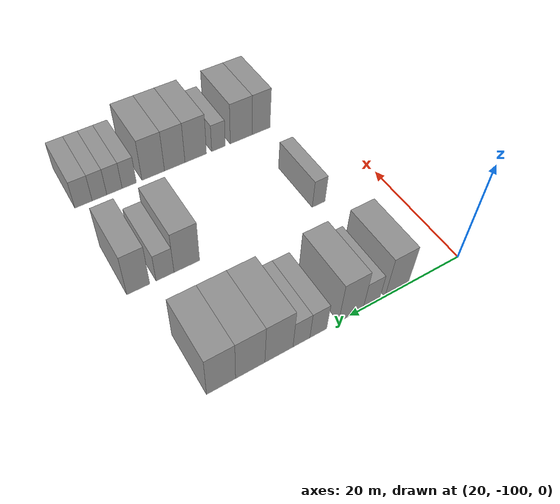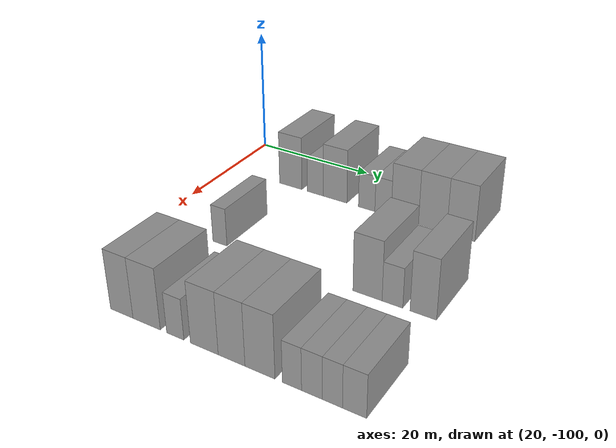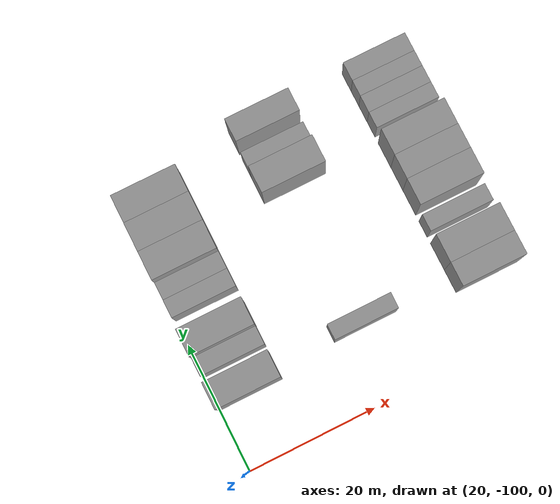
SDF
<sdf version="1.6">
 <world name="default">
  <model name="building_40">
   <static>1</static>
   <pose>25.0000 -88.2988 0 0.000000 0.000000 0.000000</pose>
   <link name="link">
    <pose>0 0 4.50 0 0 0</pose>
    <collision name="collision"><geometry><box><size>10.0000 4.1990 9.0000</size></box></geometry></collision>
    <visual name="visual">
     <cast_shadows>0</cast_shadows>
     <geometry><box><size>10.0000 4.1990 9.0000</size></box></geometry>
     <material>
      <script>
       <uri>model://grey_wall/materials/scripts</uri>
       <uri>model://grey_wall/materials/textures</uri>
       <name>vrc/grey_wall</name>
      </script>
     </material>
    </visual>
   </link>
  </model>
  <model name="building_41">
   <static>1</static>
   <pose>25.0000 -83.7598 0 0.000000 0.000000 0.000000</pose>
   <link name="link">
    <pose>0 0 3.00 0 0 0</pose>
    <collision name="collision"><geometry><box><size>10.0000 2.8790 6.0000</size></box></geometry></collision>
    <visual name="visual">
     <cast_shadows>0</cast_shadows>
     <geometry><box><size>10.0000 2.8790 6.0000</size></box></geometry>
     <material>
      <script>
       <uri>model://grey_wall/materials/scripts</uri>
       <uri>model://grey_wall/materials/textures</uri>
       <name>vrc/grey_wall</name>
      </script>
     </material>
    </visual>
   </link>
  </model>
  <model name="building_42">
   <static>1</static>
   <pose>25.0000 -80.1985 0 0.000000 0.000000 0.000000</pose>
   <link name="link">
    <pose>0 0 4.50 0 0 0</pose>
    <collision name="collision"><geometry><box><size>10.0000 4.2437 9.0000</size></box></geometry></collision>
    <visual name="visual">
     <cast_shadows>0</cast_shadows>
     <geometry><box><size>10.0000 4.2437 9.0000</size></box></geometry>
     <material>
      <script>
       <uri>model://grey_wall/materials/scripts</uri>
       <uri>model://grey_wall/materials/textures</uri>
       <name>vrc/grey_wall</name>
      </script>
     </material>
    </visual>
   </link>
  </model>
  <model name="building_43">
   <static>1</static>
   <pose>25.0000 -74.6716 0 0.000000 0.000000 0.000000</pose>
   <link name="link">
    <pose>0 0 3.00 0 0 0</pose>
    <collision name="collision"><geometry><box><size>10.0000 2.8101 6.0000</size></box></geometry></collision>
    <visual name="visual">
     <cast_shadows>0</cast_shadows>
     <geometry><box><size>10.0000 2.8101 6.0000</size></box></geometry>
     <material>
      <script>
       <uri>model://grey_wall/materials/scripts</uri>
       <uri>model://grey_wall/materials/textures</uri>
       <name>vrc/grey_wall</name>
      </script>
     </material>
    </visual>
   </link>
  </model>
  <model name="building_44">
   <static>1</static>
   <pose>25.0000 -71.8956 0 0.000000 0.000000 0.000000</pose>
   <link name="link">
    <pose>0 0 3.00 0 0 0</pose>
    <collision name="collision"><geometry><box><size>10.0000 2.7419 6.0000</size></box></geometry></collision>
    <visual name="visual">
     <cast_shadows>0</cast_shadows>
     <geometry><box><size>10.0000 2.7419 6.0000</size></box></geometry>
     <material>
      <script>
       <uri>model://grey_wall/materials/scripts</uri>
       <uri>model://grey_wall/materials/textures</uri>
       <name>vrc/grey_wall</name>
      </script>
     </material>
    </visual>
   </link>
  </model>
  <model name="building_45">
   <static>1</static>
   <pose>25.0000 -68.2941 0 0.000000 0.000000 0.000000</pose>
   <link name="link">
    <pose>0 0 4.50 0 0 0</pose>
    <collision name="collision"><geometry><box><size>10.0000 4.4611 9.0000</size></box></geometry></collision>
    <visual name="visual">
     <cast_shadows>0</cast_shadows>
     <geometry><box><size>10.0000 4.4611 9.0000</size></box></geometry>
     <material>
      <script>
       <uri>model://grey_wall/materials/scripts</uri>
       <uri>model://grey_wall/materials/textures</uri>
       <name>vrc/grey_wall</name>
      </script>
     </material>
    </visual>
   </link>
  </model>
  <model name="building_46">
   <static>1</static>
   <pose>25.0000 -63.8173 0 0.000000 0.000000 0.000000</pose>
   <link name="link">
    <pose>0 0 4.50 0 0 0</pose>
    <collision name="collision"><geometry><box><size>10.0000 4.4925 9.0000</size></box></geometry></collision>
    <visual name="visual">
     <cast_shadows>0</cast_shadows>
     <geometry><box><size>10.0000 4.4925 9.0000</size></box></geometry>
     <material>
      <script>
       <uri>model://grey_wall/materials/scripts</uri>
       <uri>model://grey_wall/materials/textures</uri>
       <name>vrc/grey_wall</name>
      </script>
     </material>
    </visual>
   </link>
  </model>
  <model name="building_47">
   <static>1</static>
   <pose>25.0000 -59.4167 0 0.000000 0.000000 0.000000</pose>
   <link name="link">
    <pose>0 0 4.50 0 0 0</pose>
    <collision name="collision"><geometry><box><size>10.0000 4.3088 9.0000</size></box></geometry></collision>
    <visual name="visual">
     <cast_shadows>0</cast_shadows>
     <geometry><box><size>10.0000 4.3088 9.0000</size></box></geometry>
     <material>
      <script>
       <uri>model://grey_wall/materials/scripts</uri>
       <uri>model://grey_wall/materials/textures</uri>
       <name>vrc/grey_wall</name>
      </script>
     </material>
    </visual>
   </link>
  </model>
  <model name="building_148">
   <static>1</static>
   <pose>44.0000 -87.8581 0 0.000000 0.000000 0.000000</pose>
   <link name="link">
    <pose>0 0 3.00 0 0 0</pose>
    <collision name="collision"><geometry><box><size>10.0000 2.4614 6.0000</size></box></geometry></collision>
    <visual name="visual">
     <cast_shadows>0</cast_shadows>
     <geometry><box><size>10.0000 2.4614 6.0000</size></box></geometry>
     <material>
      <script>
       <uri>model://grey_wall/materials/scripts</uri>
       <uri>model://grey_wall/materials/textures</uri>
       <name>vrc/grey_wall</name>
      </script>
     </material>
    </visual>
   </link>
  </model>
  <model name="building_149">
   <static>1</static>
   <pose>44.0000 -64.2632 0 0.000000 0.000000 0.000000</pose>
   <link name="link">
    <pose>0 0 4.50 0 0 0</pose>
    <collision name="collision"><geometry><box><size>10.0000 4.2428 9.0000</size></box></geometry></collision>
    <visual name="visual">
     <cast_shadows>0</cast_shadows>
     <geometry><box><size>10.0000 4.2428 9.0000</size></box></geometry>
     <material>
      <script>
       <uri>model://grey_wall/materials/scripts</uri>
       <uri>model://grey_wall/materials/textures</uri>
       <name>vrc/grey_wall</name>
      </script>
     </material>
    </visual>
   </link>
  </model>
  <model name="building_150">
   <static>1</static>
   <pose>44.0000 -60.6771 0 0.000000 0.000000 0.000000</pose>
   <link name="link">
    <pose>0 0 3.00 0 0 0</pose>
    <collision name="collision"><geometry><box><size>10.0000 2.9295 6.0000</size></box></geometry></collision>
    <visual name="visual">
     <cast_shadows>0</cast_shadows>
     <geometry><box><size>10.0000 2.9295 6.0000</size></box></geometry>
     <material>
      <script>
       <uri>model://grey_wall/materials/scripts</uri>
       <uri>model://grey_wall/materials/textures</uri>
       <name>vrc/grey_wall</name>
      </script>
     </material>
    </visual>
   </link>
  </model>
  <model name="building_151">
   <static>1</static>
   <pose>44.0000 -56.3960 0 0.000000 0.000000 0.000000</pose>
   <link name="link">
    <pose>0 0 4.50 0 0 0</pose>
    <collision name="collision"><geometry><box><size>10.0000 3.6327 9.0000</size></box></geometry></collision>
    <visual name="visual">
     <cast_shadows>0</cast_shadows>
     <geometry><box><size>10.0000 3.6327 9.0000</size></box></geometry>
     <material>
      <script>
       <uri>model://grey_wall/materials/scripts</uri>
       <uri>model://grey_wall/materials/textures</uri>
       <name>vrc/grey_wall</name>
      </script>
     </material>
    </visual>
   </link>
  </model>
  <model name="building_268">
   <static>1</static>
   <pose>63.0000 -88.7123 0 0.000000 0.000000 0.000000</pose>
   <link name="link">
    <pose>0 0 4.50 0 0 0</pose>
    <collision name="collision"><geometry><box><size>10.0000 3.7062 9.0000</size></box></geometry></collision>
    <visual name="visual">
     <cast_shadows>0</cast_shadows>
     <geometry><box><size>10.0000 3.7062 9.0000</size></box></geometry>
     <material>
      <script>
       <uri>model://grey_wall/materials/scripts</uri>
       <uri>model://grey_wall/materials/textures</uri>
       <name>vrc/grey_wall</name>
      </script>
     </material>
    </visual>
   </link>
  </model>
  <model name="building_269">
   <static>1</static>
   <pose>63.0000 -84.6684 0 0.000000 0.000000 0.000000</pose>
   <link name="link">
    <pose>0 0 4.50 0 0 0</pose>
    <collision name="collision"><geometry><box><size>10.0000 4.3816 9.0000</size></box></geometry></collision>
    <visual name="visual">
     <cast_shadows>0</cast_shadows>
     <geometry><box><size>10.0000 4.3816 9.0000</size></box></geometry>
     <material>
      <script>
       <uri>model://grey_wall/materials/scripts</uri>
       <uri>model://grey_wall/materials/textures</uri>
       <name>vrc/grey_wall</name>
      </script>
     </material>
    </visual>
   </link>
  </model>
  <model name="building_270">
   <static>1</static>
   <pose>63.0000 -80.1488 0 0.000000 0.000000 0.000000</pose>
   <link name="link">
    <pose>0 0 3.00 0 0 0</pose>
    <collision name="collision"><geometry><box><size>10.0000 2.6576 6.0000</size></box></geometry></collision>
    <visual name="visual">
     <cast_shadows>0</cast_shadows>
     <geometry><box><size>10.0000 2.6576 6.0000</size></box></geometry>
     <material>
      <script>
       <uri>model://grey_wall/materials/scripts</uri>
       <uri>model://grey_wall/materials/textures</uri>
       <name>vrc/grey_wall</name>
      </script>
     </material>
    </visual>
   </link>
  </model>
  <model name="building_271">
   <static>1</static>
   <pose>63.0000 -75.7652 0 0.000000 0.000000 0.000000</pose>
   <link name="link">
    <pose>0 0 4.50 0 0 0</pose>
    <collision name="collision"><geometry><box><size>10.0000 4.1094 9.0000</size></box></geometry></collision>
    <visual name="visual">
     <cast_shadows>0</cast_shadows>
     <geometry><box><size>10.0000 4.1094 9.0000</size></box></geometry>
     <material>
      <script>
       <uri>model://grey_wall/materials/scripts</uri>
       <uri>model://grey_wall/materials/textures</uri>
       <name>vrc/grey_wall</name>
      </script>
     </material>
    </visual>
   </link>
  </model>
  <model name="building_272">
   <static>1</static>
   <pose>63.0000 -71.7953 0 0.000000 0.000000 0.000000</pose>
   <link name="link">
    <pose>0 0 4.50 0 0 0</pose>
    <collision name="collision"><geometry><box><size>10.0000 3.8305 9.0000</size></box></geometry></collision>
    <visual name="visual">
     <cast_shadows>0</cast_shadows>
     <geometry><box><size>10.0000 3.8305 9.0000</size></box></geometry>
     <material>
      <script>
       <uri>model://grey_wall/materials/scripts</uri>
       <uri>model://grey_wall/materials/textures</uri>
       <name>vrc/grey_wall</name>
      </script>
     </material>
    </visual>
   </link>
  </model>
  <model name="building_273">
   <static>1</static>
   <pose>63.0000 -67.8193 0 0.000000 0.000000 0.000000</pose>
   <link name="link">
    <pose>0 0 4.50 0 0 0</pose>
    <collision name="collision"><geometry><box><size>10.0000 4.1215 9.0000</size></box></geometry></collision>
    <visual name="visual">
     <cast_shadows>0</cast_shadows>
     <geometry><box><size>10.0000 4.1215 9.0000</size></box></geometry>
     <material>
      <script>
       <uri>model://grey_wall/materials/scripts</uri>
       <uri>model://grey_wall/materials/textures</uri>
       <name>vrc/grey_wall</name>
      </script>
     </material>
    </visual>
   </link>
  </model>
  <model name="building_274">
   <static>1</static>
   <pose>63.0000 -63.4930 0 0.000000 0.000000 0.000000</pose>
   <link name="link">
    <pose>0 0 3.00 0 0 0</pose>
    <collision name="collision"><geometry><box><size>10.0000 2.5311 6.0000</size></box></geometry></collision>
    <visual name="visual">
     <cast_shadows>0</cast_shadows>
     <geometry><box><size>10.0000 2.5311 6.0000</size></box></geometry>
     <material>
      <script>
       <uri>model://grey_wall/materials/scripts</uri>
       <uri>model://grey_wall/materials/textures</uri>
       <name>vrc/grey_wall</name>
      </script>
     </material>
    </visual>
   </link>
  </model>
  <model name="building_275">
   <static>1</static>
   <pose>63.0000 -60.8844 0 0.000000 0.000000 0.000000</pose>
   <link name="link">
    <pose>0 0 3.00 0 0 0</pose>
    <collision name="collision"><geometry><box><size>10.0000 2.6860 6.0000</size></box></geometry></collision>
    <visual name="visual">
     <cast_shadows>0</cast_shadows>
     <geometry><box><size>10.0000 2.6860 6.0000</size></box></geometry>
     <material>
      <script>
       <uri>model://grey_wall/materials/scripts</uri>
       <uri>model://grey_wall/materials/textures</uri>
       <name>vrc/grey_wall</name>
      </script>
     </material>
    </visual>
   </link>
  </model>
  <model name="building_276">
   <static>1</static>
   <pose>63.0000 -58.2828 0 0.000000 0.000000 0.000000</pose>
   <link name="link">
    <pose>0 0 3.00 0 0 0</pose>
    <collision name="collision"><geometry><box><size>10.0000 2.5172 6.0000</size></box></geometry></collision>
    <visual name="visual">
     <cast_shadows>0</cast_shadows>
     <geometry><box><size>10.0000 2.5172 6.0000</size></box></geometry>
     <material>
      <script>
       <uri>model://grey_wall/materials/scripts</uri>
       <uri>model://grey_wall/materials/textures</uri>
       <name>vrc/grey_wall</name>
      </script>
     </material>
    </visual>
   </link>
  </model>
  <model name="building_277">
   <static>1</static>
   <pose>63.0000 -55.5456 0 0.000000 0.000000 0.000000</pose>
   <link name="link">
    <pose>0 0 3.00 0 0 0</pose>
    <collision name="collision"><geometry><box><size>10.0000 2.9572 6.0000</size></box></geometry></collision>
    <visual name="visual">
     <cast_shadows>0</cast_shadows>
     <geometry><box><size>10.0000 2.9572 6.0000</size></box></geometry>
     <material>
      <script>
       <uri>model://grey_wall/materials/scripts</uri>
       <uri>model://grey_wall/materials/textures</uri>
       <name>vrc/grey_wall</name>
      </script>
     </material>
    </visual>
   </link>
  </model>
 </world>
</sdf>
